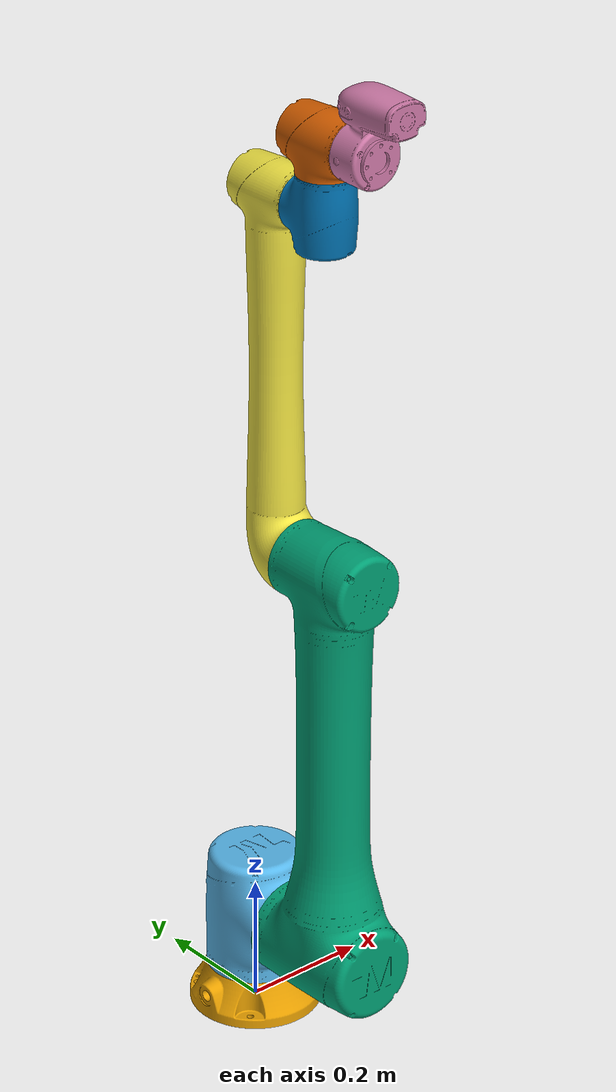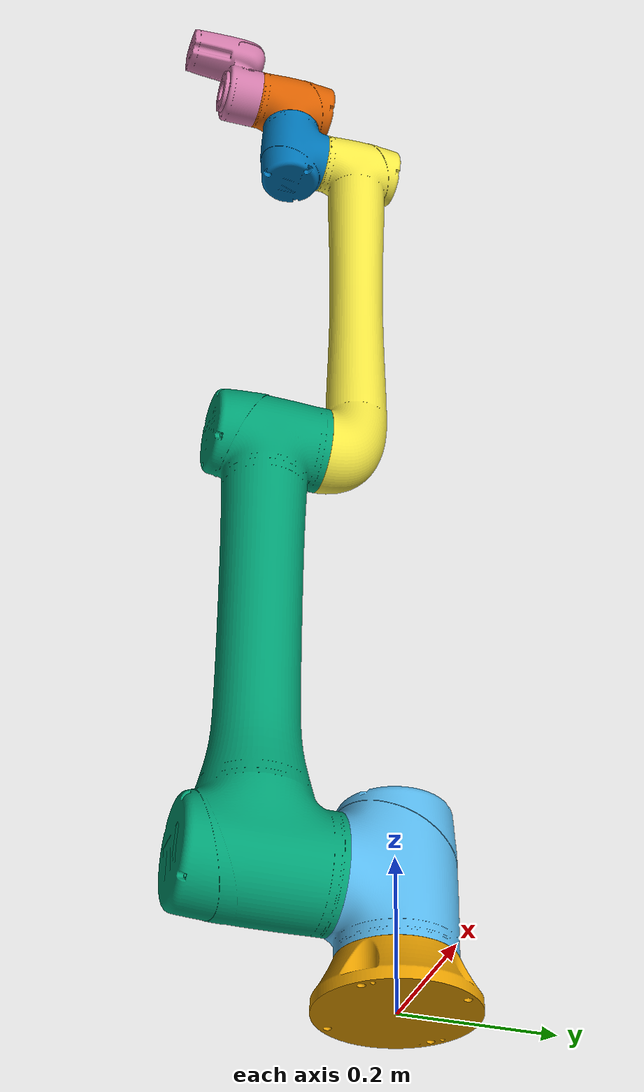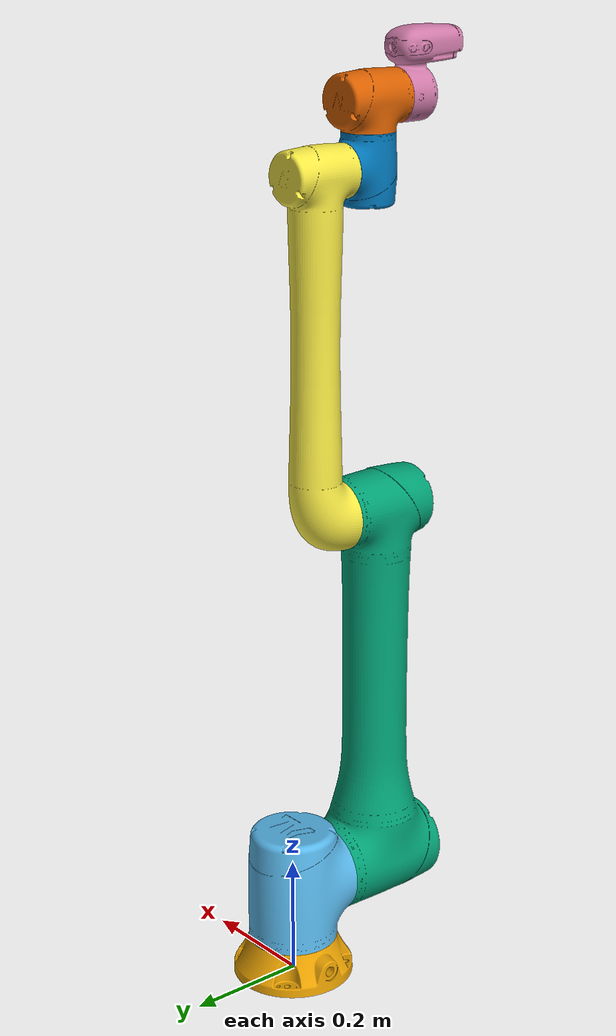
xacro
<?xml version="1.0"?>
<robot xmlns:xacro="http://www.ros.org/wiki/xacro" name="tm20">
    <xacro:arg name="initial_positions_file" default="initial_positions.yaml" />

    <!-- Import tm20 urdf file -->
    <xacro:include filename="$(find tm_description)/xacro/tm20.urdf.xacro" />

    <!-- Import control_xacro -->
    <xacro:include filename="tm20.ros2_control.xacro" />

    <xacro:tm20_ros2_control name="FakeSystem" initial_positions_file="$(arg initial_positions_file)"/>

</robot>

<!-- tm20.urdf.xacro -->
<robot xmlns:xacro="http://www.ros.org/wiki/xacro" name="tm20">

  <xacro:arg name="ns" default="" />
  <xacro:arg name="prefix" default="" />
  <xacro:arg name="color" default="none" />
  <xacro:arg name="trans_hw_iface" default="hardware_interface/PositionJointInterface" />

  <xacro:include filename="$(find tm_description)/xacro/macro.gazebo.xacro" />
  <xacro:include filename="$(find tm_description)/xacro/macro.transmission.xacro" />
  <xacro:include filename="$(find tm_description)/xacro/macro.materials.xacro" />

  <!-- tm20 -->
  <!-- If the user want to use newly generated named robot description file as user_defined.urdf.xacro, -->
  <!-- you must modify 'macro.tm20-nominal.urdf.xacro' to 'user_defined.urdf.xacro'  -->
  <xacro:include filename="$(find tm_description)/xacro/macro.tm20-nominal.urdf.xacro" />

  <xacro:tmr_gazebo ns="$(arg ns)" prefix="$(arg prefix)" />
  <xacro:tmr_transmission prefix="$(arg prefix)" hw_iface="$(arg trans_hw_iface)" />
  <xacro:tmr_materials/>

  <!-- Arm -->
  <xacro:property name="color" value="$(arg color)"/>
  <xacro:if value="${color == 'none'}">
    <xacro:tm20 ns="$(arg ns)" prefix="$(arg prefix)" />
  </xacro:if>

  <!-- Arm.color.stl -->
  <xacro:unless value="${color == 'none'}">
    <xacro:tm20 ns="$(arg ns)" prefix="$(arg prefix)" color="${color}" format="stl" />
  </xacro:unless>

</robot>

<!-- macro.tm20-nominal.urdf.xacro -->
<robot xmlns:xacro="http://www.ros.org/wiki/xacro">

  <xacro:include filename="$(find tm_description)/xacro/macro.inertial.xacro" />

  <xacro:macro name="tm20" params="ns prefix color:=none format:=obj
    joint_1_lower_limit:=${radians(-270)}    joint_1_upper_limit:=${radians(270)}
    joint_2_lower_limit:=${radians(-180)}    joint_2_upper_limit:=${radians(180)}
    joint_3_lower_limit:=${radians(-166)}    joint_3_upper_limit:=${radians(166)}
    joint_4_lower_limit:=${radians(-180)}    joint_4_upper_limit:=${radians(180)}
    joint_5_lower_limit:=${radians(-180)}    joint_5_upper_limit:=${radians(180)}
    joint_6_lower_limit:=${radians(-270)}    joint_6_upper_limit:=${radians(270)}
    joint_1_velocity_limit:=${radians(90)}
    joint_2_velocity_limit:=${radians(90)}
    joint_3_velocity_limit:=${radians(120)}
    joint_4_velocity_limit:=${radians(150)}
    joint_5_velocity_limit:=${radians(180)}
    joint_6_velocity_limit:=${radians(225)}
    joint_1_effort_limit:=${350}
    joint_2_effort_limit:=${350}
    joint_3_effort_limit:=${170}
    joint_4_effort_limit:=${45}
    joint_5_effort_limit:=${45}
    joint_6_effort_limit:=${45}
    safety_limits:=false safety_pos_margin:=0.15
    safety_k_position:=20">

   <xacro:property name="damping_factor" value="0.000"/>
   <xacro:property name="d1" value="${damping_factor*0.1}"/>
   <xacro:property name="d2" value="${damping_factor*0.1}"/>
   <xacro:property name="d3" value="${damping_factor*0.1}"/>
   <xacro:property name="d4" value="${damping_factor*0.1}"/>
   <xacro:property name="d5" value="${damping_factor*0.1}"/>
   <xacro:property name="d6" value="${damping_factor*0.1}"/>

   <xacro:property name="friction_factor" value="0.000"/>
   <xacro:property name="f1" value="${friction_factor*0.1}"/>
   <xacro:property name="f2" value="${friction_factor*0.1}"/>
   <xacro:property name="f3" value="${friction_factor*0.1}"/>
   <xacro:property name="f4" value="${friction_factor*0.1}"/>
   <xacro:property name="f5" value="${friction_factor*0.1}"/>
   <xacro:property name="f6" value="${friction_factor*0.1}"/>

    <!-- Inertia parameters -->
    <xacro:property name="mass_0" value="1.0" />
    <xacro:property name="mass_1" value="7.6" />
    <xacro:property name="mass_2" value="14.0239" />
    <xacro:property name="mass_3" value="3.3577" />
    <xacro:property name="mass_4" value="1.576" />
    <xacro:property name="mass_5" value="1.576" />
    <xacro:property name="mass_6" value="0.4" />

    <xacro:property name="unit_factor" value="0.000001"/>
    <xacro:property name="ixx_1" value="${20289.334*unit_factor}" />
    <xacro:property name="ixx_2" value="${71505.715*unit_factor}" />
    <xacro:property name="ixx_3" value="${9755.469*unit_factor}" />
    <xacro:property name="ixx_4" value="${2058.405*unit_factor}" />
    <xacro:property name="ixx_5" value="${2058.405*unit_factor}" />
    <xacro:property name="ixx_6" value="${476.643*unit_factor}" />

    <xacro:property name="iyy_1" value="${20289.334*unit_factor}" />
    <xacro:property name="iyy_2" value="${1175878.900*unit_factor}" />
    <xacro:property name="iyy_3" value="${163347.190*unit_factor}" />
    <xacro:property name="iyy_4" value="${2563.079*unit_factor}" />
    <xacro:property name="iyy_5" value="${2563.079*unit_factor}" />
    <xacro:property name="iyy_6" value="${851.576*unit_factor}" />

    <xacro:property name="izz_1" value="${21396.271*unit_factor}" />
    <xacro:property name="izz_2" value="${1203393.300*unit_factor}" />
    <xacro:property name="izz_3" value="${166566.78*unit_factor}" />
    <xacro:property name="izz_4" value="${2643.21*unit_factor}" />
    <xacro:property name="izz_5" value="${2643.21*unit_factor}" />
    <xacro:property name="izz_6" value="${959.690*unit_factor}" />

<!--LinkDescription-->
  <link name="${prefix}link_0">
    <visual>
      <geometry>
        <mesh filename="package://tm_description/meshes/tm12/visual/tm12-base.${format}" />
      </geometry>
      <material name="${color}" />
    </visual>
    <collision>
      <geometry>
        <mesh filename="package://tm_description/meshes/tm12/collision/tm12-base_c.stl" />
      </geometry>
    </collision>
<!--inertial-->
    <xacro:cylinder_inertial_z radius="0.06" length="0.05" mass="${mass_0}">
      <origin rpy="0.000000 0.000000 0.000000" xyz="0.000000 0.000000 0.000000" />
    </xacro:cylinder_inertial_z>
  </link>
  <joint name="${prefix}joint_1" type="revolute">
    <parent link="${prefix}link_0" />
    <child link="${prefix}link_1" />
    <origin rpy="0.000000 -0.000000 0.000000" xyz="0.000000 0.000000 0.165200" />
    <axis xyz="0 0 1" />
<!--limit-->
    <limit lower="${joint_1_lower_limit}" upper="${joint_1_upper_limit}" velocity="${joint_1_velocity_limit}" effort="${joint_1_effort_limit}" />
    <xacro:if value="${safety_limits}">
      <safety_controller soft_lower_limit="${joint_1_lower_limit + safety_pos_margin}" soft_upper_limit="${joint_1_upper_limit - safety_pos_margin}" k_position="${safety_k_position}" k_velocity="0.0" />
    </xacro:if>
    <dynamics damping="${d1}" friction="${f1}" />
  </joint>
  <link name="${prefix}link_1">
    <visual>
      <geometry>
        <mesh filename="package://tm_description/meshes/tm20/visual/tm20-j1.${format}" />
      </geometry>
      <material name="${color}" />
    </visual>
    <collision>
      <geometry>
        <mesh filename="package://tm_description/meshes/tm20/collision/tm20-j1_c.stl" />
      </geometry>
    </collision>
    <inertial>
      <origin rpy="0.000000 0.000000 0.000000" xyz="0.000000 0.000000 0.000000" />
      <mass value="${mass_1}" />
      <inertia ixx="${ixx_1}" ixy="0.000000" ixz="0.000000" iyy="${iyy_1}" iyz="0.000000" izz="${izz_1}" />
    </inertial>
  </link>
  <joint name="${prefix}joint_2" type="revolute">
    <parent link="${prefix}link_1" />
    <child link="${prefix}link_2" />
    <origin rpy="-1.570796 -1.570796 0.000000" xyz="0.000000 0.000000 0.000000" />
    <axis xyz="0 0 1" />
<!--limit-->
    <limit lower="${joint_2_lower_limit}" upper="${joint_2_upper_limit}" velocity="${joint_2_velocity_limit}" effort="${joint_2_effort_limit}" />
    <xacro:if value="${safety_limits}">
      <safety_controller soft_lower_limit="${joint_2_lower_limit + safety_pos_margin}" soft_upper_limit="${joint_2_upper_limit - safety_pos_margin}" k_position="${safety_k_position}" k_velocity="0.0" />
    </xacro:if>
    <dynamics damping="${d2}" friction="${f2}" />
  </joint>
  <link name="${prefix}link_2">
    <visual>
      <geometry>
        <mesh filename="package://tm_description/meshes/tm20/visual/tm20-arm1.${format}" />
      </geometry>
      <material name="${color}" />
    </visual>
    <collision>
      <geometry>
        <mesh filename="package://tm_description/meshes/tm20/collision/tm20-arm1_c.stl" />
      </geometry>
    </collision>
    <inertial>
      <origin rpy="0.000000 0.000000 0.000000" xyz="0.000000 0.000000 0.000000" />
      <mass value="${mass_2}" />
      <inertia ixx="${ixx_2}" ixy="0.000000" ixz="0.000000" iyy="${iyy_2}" iyz="0.000000" izz="${izz_2}" />
    </inertial>
  </link>
  <joint name="${prefix}joint_3" type="revolute">
    <parent link="${prefix}link_2" />
    <child link="${prefix}link_3" />
    <origin rpy="0.000000 -0.000000 0.000000" xyz="0.636100 0.000000 0.000000" />
    <axis xyz="0 0 1" />
<!--limit-->
    <limit lower="${joint_3_lower_limit}" upper="${joint_3_upper_limit}" velocity="${joint_3_velocity_limit}" effort="${joint_3_effort_limit}" />
    <xacro:if value="${safety_limits}">
      <safety_controller soft_lower_limit="${joint_3_lower_limit + safety_pos_margin}" soft_upper_limit="${joint_3_upper_limit - safety_pos_margin}" k_position="${safety_k_position}" k_velocity="0.0" />
    </xacro:if>
    <dynamics damping="${d3}" friction="${f3}" />
  </joint>
  <link name="${prefix}link_3">
    <visual>
      <geometry>
        <mesh filename="package://tm_description/meshes/tm20/visual/tm20-arm2.${format}" />
      </geometry>
      <material name="${color}" />
    </visual>
    <collision>
      <geometry>
        <mesh filename="package://tm_description/meshes/tm20/collision/tm20-arm2_c.stl" />
      </geometry>
    </collision>
    <inertial>
      <origin rpy="0.000000 0.000000 0.000000" xyz="0.000000 0.000000 0.000000" />
      <mass value="${mass_3}" />
      <inertia ixx="${ixx_3}" ixy="0.000000" ixz="0.000000" iyy="${iyy_3}" iyz="0.000000" izz="${izz_3}" />
    </inertial>
  </link>
  <joint name="${prefix}joint_4" type="revolute">
    <parent link="${prefix}link_3" />
    <child link="${prefix}link_4" />
    <origin rpy="0.000000 -0.000000 1.570796" xyz="0.557900 0.000000 -0.156300" />
    <axis xyz="0 0 1" />
<!--limit-->
    <limit lower="${joint_4_lower_limit}" upper="${joint_4_upper_limit}" velocity="${joint_4_velocity_limit}" effort="${joint_4_effort_limit}" />
    <xacro:if value="${safety_limits}">
      <safety_controller soft_lower_limit="${joint_4_lower_limit + safety_pos_margin}" soft_upper_limit="${joint_4_upper_limit - safety_pos_margin}" k_position="${safety_k_position}" k_velocity="0.0" />
    </xacro:if>
    <dynamics damping="${d4}" friction="${f4}" />
  </joint>
  <link name="${prefix}link_4">
    <visual>
      <geometry>
        <mesh filename="package://tm_description/meshes/tm20/visual/tm20-j5.${format}" />
      </geometry>
      <material name="${color}" />
    </visual>
    <collision>
      <geometry>
        <mesh filename="package://tm_description/meshes/tm20/collision/tm20-j5_c.stl" />
      </geometry>
    </collision>
    <inertial>
      <origin rpy="0.000000 0.000000 0.000000" xyz="0.000000 0.000000 0.000000" />
      <mass value="${mass_4}" />
      <inertia ixx="${ixx_4}" ixy="0.000000" ixz="0.000000" iyy="${iyy_4}" iyz="0.000000" izz="${izz_4}" />
    </inertial>
  </link>
  <joint name="${prefix}joint_5" type="revolute">
    <parent link="${prefix}link_4" />
    <child link="${prefix}link_5" />
    <origin rpy="1.570796 -0.000000 0.000000" xyz="0.000000 -0.106000 0.000000" />
    <axis xyz="0 0 1" />
<!--limit-->
    <limit lower="${joint_5_lower_limit}" upper="${joint_5_upper_limit}" velocity="${joint_5_velocity_limit}" effort="${joint_5_effort_limit}" />
    <xacro:if value="${safety_limits}">
      <safety_controller soft_lower_limit="${joint_5_lower_limit + safety_pos_margin}" soft_upper_limit="${joint_5_upper_limit - safety_pos_margin}" k_position="${safety_k_position}" k_velocity="0.0" />
    </xacro:if>
    <dynamics damping="${d5}" friction="${f5}" />
  </joint>
  <link name="${prefix}link_5">
    <visual>
      <geometry>
        <mesh filename="package://tm_description/meshes/tm20/visual/tm20-j6.obj"/>
      </geometry>
      <material name="${color}" />
    </visual>
    <collision>
      <geometry>
        <mesh filename="package://tm_description/meshes/tm20/collision/tm20-j6_c.stl"/>
      </geometry>
    </collision>
    <inertial>
      <origin rpy="0.000000 0.000000 0.000000" xyz="0.000000 0.000000 0.000000" />
      <mass value="${mass_5}" />
      <inertia ixx="${ixx_5}" ixy="0.000000" ixz="0.000000" iyy="${iyy_5}" iyz="0.000000" izz="${izz_5}" />
    </inertial>
  </link>
  <joint name="${prefix}joint_6" type="revolute">
    <parent link="${prefix}link_5" />
    <child link="${prefix}link_6" />
    <origin rpy="1.570796 -0.000000 0.000000" xyz="0.000000 -0.113150 0.000000" />
    <axis xyz="0 0 1" />
<!--limit-->
    <limit lower="${joint_6_lower_limit}" upper="${joint_6_upper_limit}" velocity="${joint_6_velocity_limit}" effort="${joint_6_effort_limit}" />
    <xacro:if value="${safety_limits}">
      <safety_controller soft_lower_limit="${joint_6_lower_limit + safety_pos_margin}" soft_upper_limit="${joint_6_upper_limit - safety_pos_margin}" k_position="${safety_k_position}" k_velocity="0.0" />
    </xacro:if>
    <dynamics damping="${d6}" friction="${f6}" />
  </joint>
  <link name="${prefix}link_6">
    <visual>
      <geometry>
        <mesh filename="package://tm_description/meshes/tm5-900/visual/tmr_ee.${format}" />
      </geometry>
      <material name="${color}" />
    </visual>
    <collision>
      <geometry>
        <mesh filename="package://tm_description/meshes/tm5-900/collision/tmr_ee_c.stl" />
      </geometry>
    </collision>
    <inertial>
      <origin rpy="0.000000 0.000000 0.000000" xyz="0.000000 0.000000 0.000000" />
      <mass value="${mass_6}" />
      <inertia ixx="${ixx_6}" ixy="0.000000" ixz="0.000000" iyy="${iyy_6}" iyz="0.000000" izz="${izz_6}" />
    </inertial>
  </link>
  <link name="${prefix}base" />
  <joint name="${prefix}base_fixed_joint" type="fixed">
    <parent link="${prefix}base" />
    <child link="${prefix}link_0" />
    <origin rpy="0.000000 0.000000 0.000000" xyz="0.000000 0.000000 0.000000" />
  </joint>
  <link name="${prefix}flange" />
  <joint name="${prefix}flange_fixed_joint" type="fixed">
    <parent link="${prefix}link_6" />
    <child link="${prefix}flange" />
    <origin rpy="0.000000 0.000000 0.000000" xyz="0.000000 0.000000 0.000000" />
  </joint>
<!--LinkDescription-->

  </xacro:macro>

</robot>
